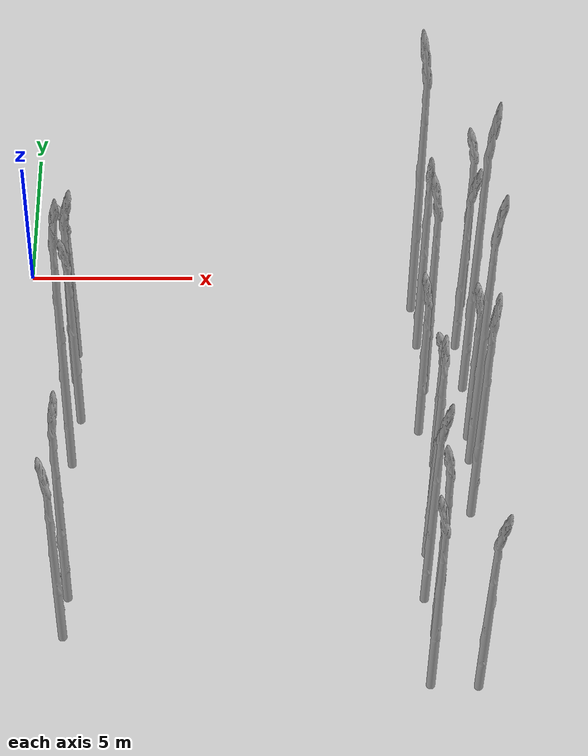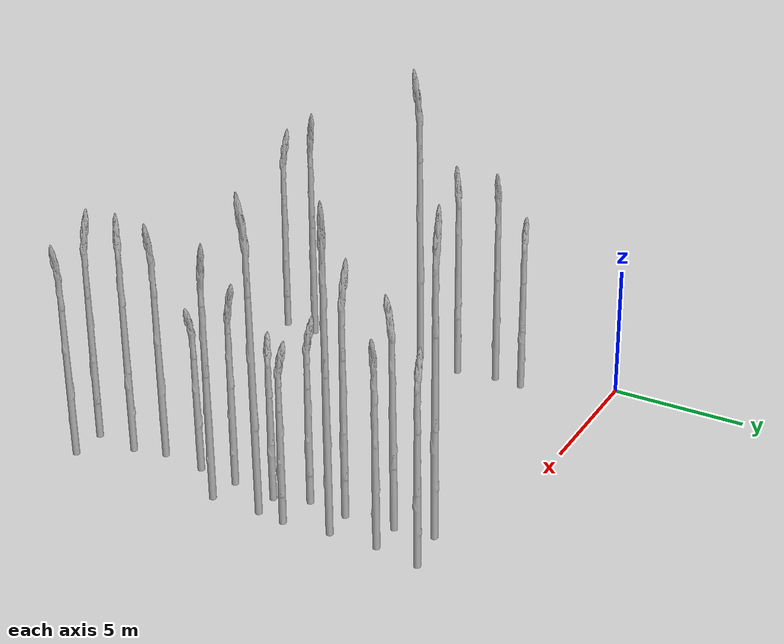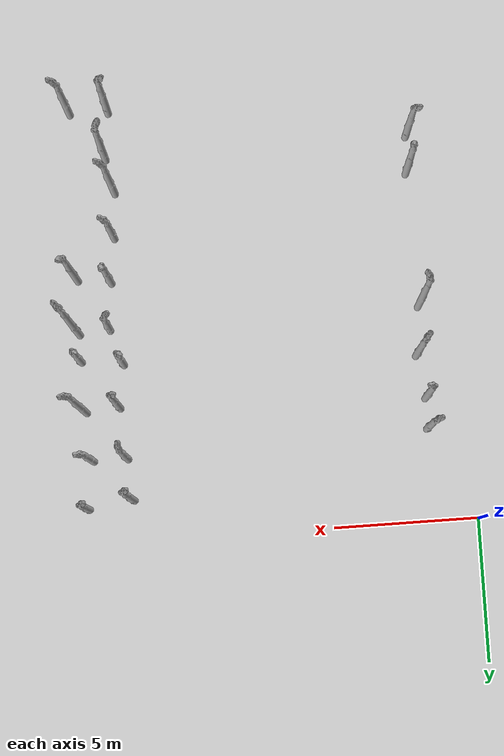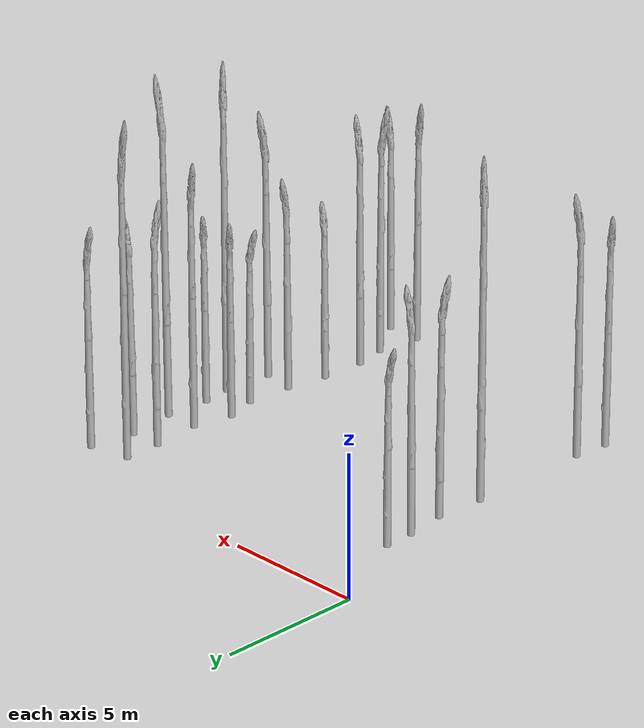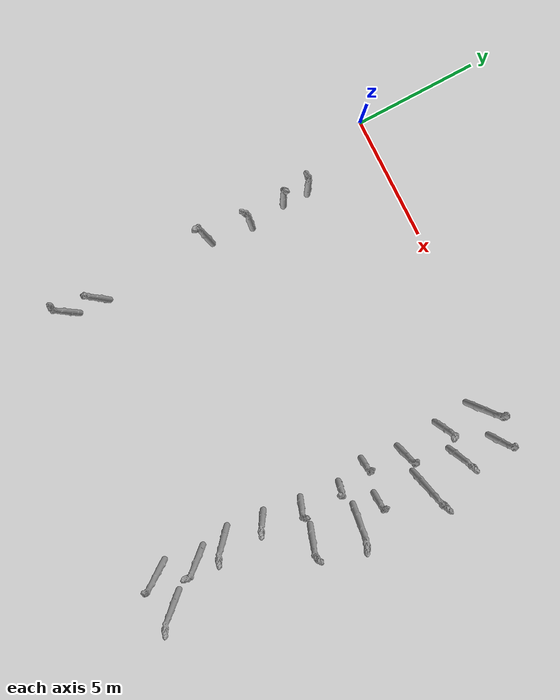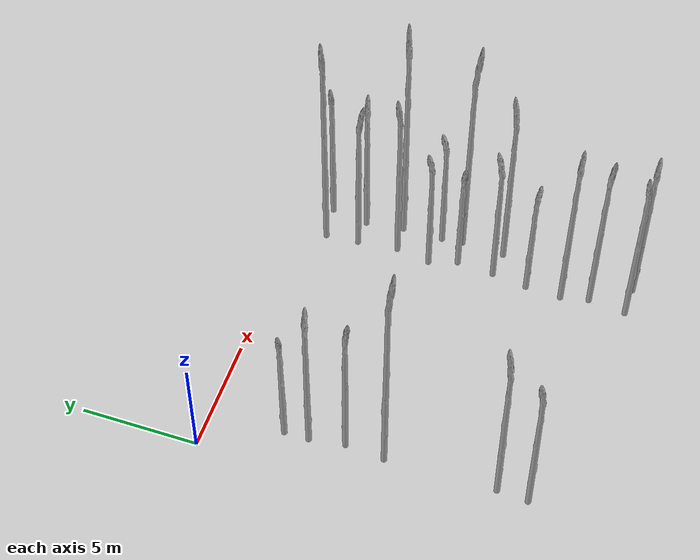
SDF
<sdf version="1.6">
 <world name="default">
  <model name="asparagus_2">
   <pose>11.7751 -14.9194 0 0 -0 2.76325</pose>
   <static>1</static>
   <link name="asparagus_2">
    <visual name="visual">
     <geometry>
      <mesh><uri>model://Asparagus/meshes/asparagus.obj</uri><scale>0.3 0.3 0.43368</scale></mesh>
     </geometry>
    </visual>
    <collision name="collision">
     <geometry>
      <mesh><uri>model://Asparagus/meshes/asparagus.obj</uri><scale>0.3 0.3 0.43368</scale></mesh>
     </geometry>
    </collision>
   </link>
  </model>
  <model name="asparagus_5">
   <pose>11.9679 -13.3703 0 0 -0 -2.53466</pose>
   <static>1</static>
   <link name="asparagus_5">
    <visual name="visual">
     <geometry>
      <mesh><uri>model://Asparagus/meshes/asparagus.obj</uri><scale>0.3 0.3 0.44451</scale></mesh>
     </geometry>
    </visual>
    <collision name="collision">
     <geometry>
      <mesh><uri>model://Asparagus/meshes/asparagus.obj</uri><scale>0.3 0.3 0.44451</scale></mesh>
     </geometry>
    </collision>
   </link>
  </model>
  <model name="asparagus_8">
   <pose>11.8777 -12.1383 0 0 -0 -0.096665</pose>
   <static>1</static>
   <link name="asparagus_8">
    <visual name="visual">
     <geometry>
      <mesh><uri>model://Asparagus/meshes/asparagus.obj</uri><scale>0.3 0.3 0.444692</scale></mesh>
     </geometry>
    </visual>
    <collision name="collision">
     <geometry>
      <mesh><uri>model://Asparagus/meshes/asparagus.obj</uri><scale>0.3 0.3 0.444692</scale></mesh>
     </geometry>
    </collision>
   </link>
  </model>
  <model name="asparagus_11">
   <pose>11.9933 -10.5922 0 0 -0 -0.335565</pose>
   <static>1</static>
   <link name="asparagus_11">
    <visual name="visual">
     <geometry>
      <mesh><uri>model://Asparagus/meshes/asparagus.obj</uri><scale>0.3 0.3 0.313973</scale></mesh>
     </geometry>
    </visual>
    <collision name="collision">
     <geometry>
      <mesh><uri>model://Asparagus/meshes/asparagus.obj</uri><scale>0.3 0.3 0.313973</scale></mesh>
     </geometry>
    </collision>
   </link>
  </model>
  <model name="asparagus_14">
   <pose>12.1264 -8.9274 0 0 -0 1.63535</pose>
   <static>1</static>
   <link name="asparagus_14">
    <visual name="visual">
     <geometry>
      <mesh><uri>model://Asparagus/meshes/asparagus.obj</uri><scale>0.3 0.3 0.379227</scale></mesh>
     </geometry>
    </visual>
    <collision name="collision">
     <geometry>
      <mesh><uri>model://Asparagus/meshes/asparagus.obj</uri><scale>0.3 0.3 0.379227</scale></mesh>
     </geometry>
    </collision>
   </link>
  </model>
  <model name="asparagus_17">
   <pose>12.2011 -7.40612 0 0 -0 -2.67844</pose>
   <static>1</static>
   <link name="asparagus_17">
    <visual name="visual">
     <geometry>
      <mesh><uri>model://Asparagus/meshes/asparagus.obj</uri><scale>0.3 0.3 0.309955</scale></mesh>
     </geometry>
    </visual>
    <collision name="collision">
     <geometry>
      <mesh><uri>model://Asparagus/meshes/asparagus.obj</uri><scale>0.3 0.3 0.309955</scale></mesh>
     </geometry>
    </collision>
   </link>
  </model>
  <model name="asparagus_20">
   <pose>11.8231 -6.08831 0 0 -0 2.40759</pose>
   <static>1</static>
   <link name="asparagus_20">
    <visual name="visual">
     <geometry>
      <mesh><uri>model://Asparagus/meshes/asparagus.obj</uri><scale>0.3 0.3 0.347144</scale></mesh>
     </geometry>
    </visual>
    <collision name="collision">
     <geometry>
      <mesh><uri>model://Asparagus/meshes/asparagus.obj</uri><scale>0.3 0.3 0.347144</scale></mesh>
     </geometry>
    </collision>
   </link>
  </model>
  <model name="asparagus_23">
   <pose>12.0275 -4.61338 0 0 -0 2.80308</pose>
   <static>1</static>
   <link name="asparagus_23">
    <visual name="visual">
     <geometry>
      <mesh><uri>model://Asparagus/meshes/asparagus.obj</uri><scale>0.3 0.3 0.466317</scale></mesh>
     </geometry>
    </visual>
    <collision name="collision">
     <geometry>
      <mesh><uri>model://Asparagus/meshes/asparagus.obj</uri><scale>0.3 0.3 0.466317</scale></mesh>
     </geometry>
    </collision>
   </link>
  </model>
  <model name="asparagus_26">
   <pose>11.9356 -2.94938 0 0 -0 -1.71101</pose>
   <static>1</static>
   <link name="asparagus_26">
    <visual name="visual">
     <geometry>
      <mesh><uri>model://Asparagus/meshes/asparagus.obj</uri><scale>0.3 0.3 0.423964</scale></mesh>
     </geometry>
    </visual>
    <collision name="collision">
     <geometry>
      <mesh><uri>model://Asparagus/meshes/asparagus.obj</uri><scale>0.3 0.3 0.423964</scale></mesh>
     </geometry>
    </collision>
   </link>
  </model>
  <model name="asparagus_29">
   <pose>11.7423 -1.42219 0 0 -0 -3.09264</pose>
   <static>1</static>
   <link name="asparagus_29">
    <visual name="visual">
     <geometry>
      <mesh><uri>model://Asparagus/meshes/asparagus.obj</uri><scale>0.3 0.3 0.582399</scale></mesh>
     </geometry>
    </visual>
    <collision name="collision">
     <geometry>
      <mesh><uri>model://Asparagus/meshes/asparagus.obj</uri><scale>0.3 0.3 0.582399</scale></mesh>
     </geometry>
    </collision>
   </link>
  </model>
  <model name="asparagus_62">
   <pose>13.261 -15.0041 0 0 -0 -0.025895</pose>
   <static>1</static>
   <link name="asparagus_62">
    <visual name="visual">
     <geometry>
      <mesh><uri>model://Asparagus/meshes/asparagus.obj</uri><scale>0.3 0.3 0.404513</scale></mesh>
     </geometry>
    </visual>
    <collision name="collision">
     <geometry>
      <mesh><uri>model://Asparagus/meshes/asparagus.obj</uri><scale>0.3 0.3 0.404513</scale></mesh>
     </geometry>
    </collision>
   </link>
  </model>
  <model name="asparagus_74">
   <pose>13.3221 -9.09268 0 0 -0 1.05746</pose>
   <static>1</static>
   <link name="asparagus_74">
    <visual name="visual">
     <geometry>
      <mesh><uri>model://Asparagus/meshes/asparagus.obj</uri><scale>0.3 0.3 0.474075</scale></mesh>
     </geometry>
    </visual>
    <collision name="collision">
     <geometry>
      <mesh><uri>model://Asparagus/meshes/asparagus.obj</uri><scale>0.3 0.3 0.474075</scale></mesh>
     </geometry>
    </collision>
   </link>
  </model>
  <model name="asparagus_77">
   <pose>13.3875 -7.34235 0 0 -0 -0.755535</pose>
   <static>1</static>
   <link name="asparagus_77">
    <visual name="visual">
     <geometry>
      <mesh><uri>model://Asparagus/meshes/asparagus.obj</uri><scale>0.3 0.3 0.57727</scale></mesh>
     </geometry>
    </visual>
    <collision name="collision">
     <geometry>
      <mesh><uri>model://Asparagus/meshes/asparagus.obj</uri><scale>0.3 0.3 0.57727</scale></mesh>
     </geometry>
    </collision>
   </link>
  </model>
  <model name="asparagus_80">
   <pose>13.2845 -6.26994 0 0 -0 2.28805</pose>
   <static>1</static>
   <link name="asparagus_80">
    <visual name="visual">
     <geometry>
      <mesh><uri>model://Asparagus/meshes/asparagus.obj</uri><scale>0.3 0.3 0.336457</scale></mesh>
     </geometry>
    </visual>
    <collision name="collision">
     <geometry>
      <mesh><uri>model://Asparagus/meshes/asparagus.obj</uri><scale>0.3 0.3 0.336457</scale></mesh>
     </geometry>
    </collision>
   </link>
  </model>
  <model name="asparagus_83">
   <pose>13.346 -4.52856 0 0 -0 0.502885</pose>
   <static>1</static>
   <link name="asparagus_83">
    <visual name="visual">
     <geometry>
      <mesh><uri>model://Asparagus/meshes/asparagus.obj</uri><scale>0.3 0.3 0.593713</scale></mesh>
     </geometry>
    </visual>
    <collision name="collision">
     <geometry>
      <mesh><uri>model://Asparagus/meshes/asparagus.obj</uri><scale>0.3 0.3 0.593713</scale></mesh>
     </geometry>
    </collision>
   </link>
  </model>
  <model name="asparagus_86">
   <pose>13.2178 -2.85648 0 0 -0 0.238043</pose>
   <static>1</static>
   <link name="asparagus_86">
    <visual name="visual">
     <geometry>
      <mesh><uri>model://Asparagus/meshes/asparagus.obj</uri><scale>0.3 0.3 0.386547</scale></mesh>
     </geometry>
    </visual>
    <collision name="collision">
     <geometry>
      <mesh><uri>model://Asparagus/meshes/asparagus.obj</uri><scale>0.3 0.3 0.386547</scale></mesh>
     </geometry>
    </collision>
   </link>
  </model>
  <model name="asparagus_89">
   <pose>13.3122 -1.22107 0 0 -0 -3.04738</pose>
   <static>1</static>
   <link name="asparagus_89">
    <visual name="visual">
     <geometry>
      <mesh><uri>model://Asparagus/meshes/asparagus.obj</uri><scale>0.3 0.3 0.387622</scale></mesh>
     </geometry>
    </visual>
    <collision name="collision">
     <geometry>
      <mesh><uri>model://Asparagus/meshes/asparagus.obj</uri><scale>0.3 0.3 0.387622</scale></mesh>
     </geometry>
    </collision>
   </link>
  </model>
  <model name="asparagus_184">
   <pose>1.51943 -13.3536 0 0 -0 2.49063</pose>
   <static>1</static>
   <link name="asparagus_184">
    <visual name="visual">
     <geometry>
      <mesh><uri>model://Asparagus/meshes/asparagus.obj</uri><scale>0.3 0.3 0.40533</scale></mesh>
     </geometry>
    </visual>
    <collision name="collision">
     <geometry>
      <mesh><uri>model://Asparagus/meshes/asparagus.obj</uri><scale>0.3 0.3 0.40533</scale></mesh>
     </geometry>
    </collision>
   </link>
  </model>
  <model name="asparagus_187">
   <pose>1.71383 -12.0433 0 0 -0 1.02219</pose>
   <static>1</static>
   <link name="asparagus_187">
    <visual name="visual">
     <geometry>
      <mesh><uri>model://Asparagus/meshes/asparagus.obj</uri><scale>0.3 0.3 0.455017</scale></mesh>
     </geometry>
    </visual>
    <collision name="collision">
     <geometry>
      <mesh><uri>model://Asparagus/meshes/asparagus.obj</uri><scale>0.3 0.3 0.455017</scale></mesh>
     </geometry>
    </collision>
   </link>
  </model>
  <model name="asparagus_196">
   <pose>1.63915 -7.49902 0 0 -0 -0.643465</pose>
   <static>1</static>
   <link name="asparagus_196">
    <visual name="visual">
     <geometry>
      <mesh><uri>model://Asparagus/meshes/asparagus.obj</uri><scale>0.3 0.3 0.576291</scale></mesh>
     </geometry>
    </visual>
    <collision name="collision">
     <geometry>
      <mesh><uri>model://Asparagus/meshes/asparagus.obj</uri><scale>0.3 0.3 0.576291</scale></mesh>
     </geometry>
    </collision>
   </link>
  </model>
  <model name="asparagus_199">
   <pose>1.70823 -5.81357 0 0 -0 -2.26283</pose>
   <static>1</static>
   <link name="asparagus_199">
    <visual name="visual">
     <geometry>
      <mesh><uri>model://Asparagus/meshes/asparagus.obj</uri><scale>0.3 0.3 0.410374</scale></mesh>
     </geometry>
    </visual>
    <collision name="collision">
     <geometry>
      <mesh><uri>model://Asparagus/meshes/asparagus.obj</uri><scale>0.3 0.3 0.410374</scale></mesh>
     </geometry>
    </collision>
   </link>
  </model>
  <model name="asparagus_202">
   <pose>1.62971 -4.25234 0 0 -0 0.170583</pose>
   <static>1</static>
   <link name="asparagus_202">
    <visual name="visual">
     <geometry>
      <mesh><uri>model://Asparagus/meshes/asparagus.obj</uri><scale>0.3 0.3 0.4167</scale></mesh>
     </geometry>
    </visual>
    <collision name="collision">
     <geometry>
      <mesh><uri>model://Asparagus/meshes/asparagus.obj</uri><scale>0.3 0.3 0.4167</scale></mesh>
     </geometry>
    </collision>
   </link>
  </model>
  <model name="asparagus_205">
   <pose>1.48085 -3.21555 0 0 -0 -2.93209</pose>
   <static>1</static>
   <link name="asparagus_205">
    <visual name="visual">
     <geometry>
      <mesh><uri>model://Asparagus/meshes/asparagus.obj</uri><scale>0.3 0.3 0.336242</scale></mesh>
     </geometry>
    </visual>
    <collision name="collision">
     <geometry>
      <mesh><uri>model://Asparagus/meshes/asparagus.obj</uri><scale>0.3 0.3 0.336242</scale></mesh>
     </geometry>
    </collision>
   </link>
  </model>
 </world>
</sdf>
